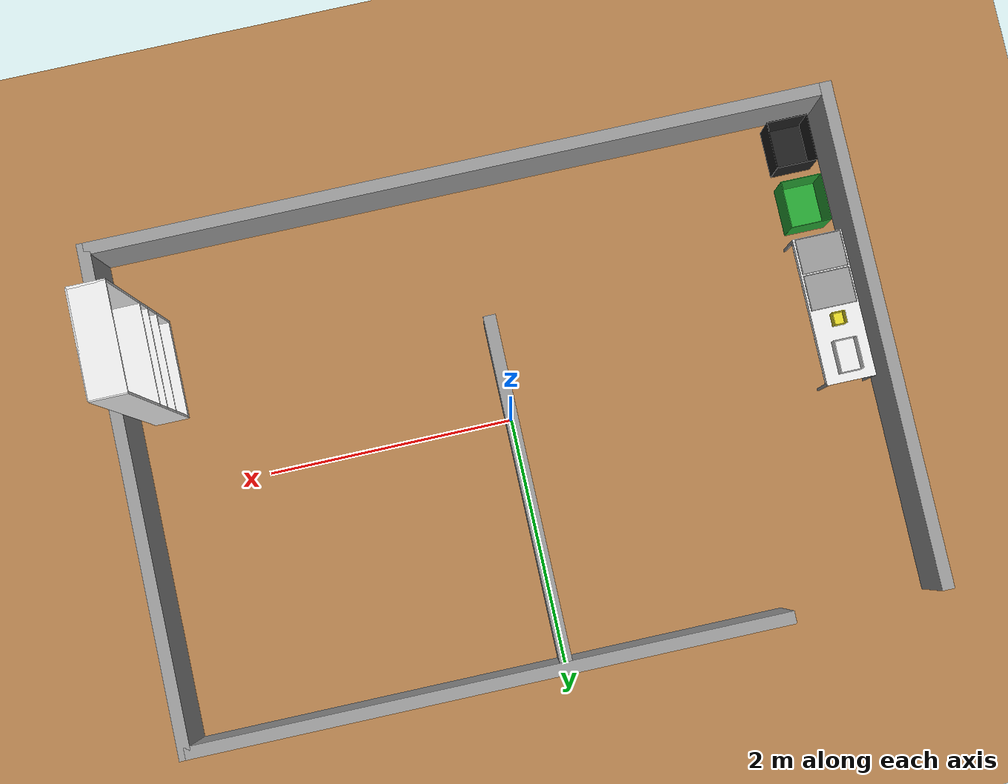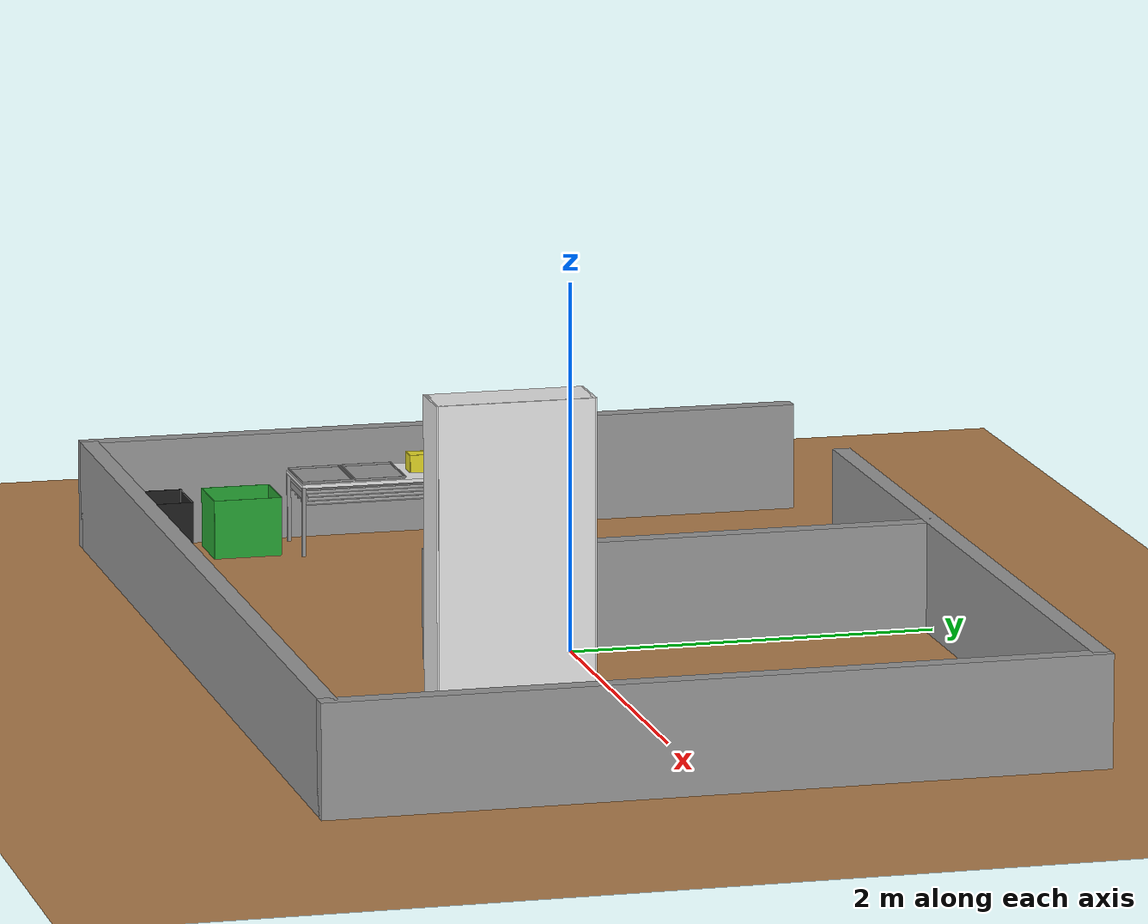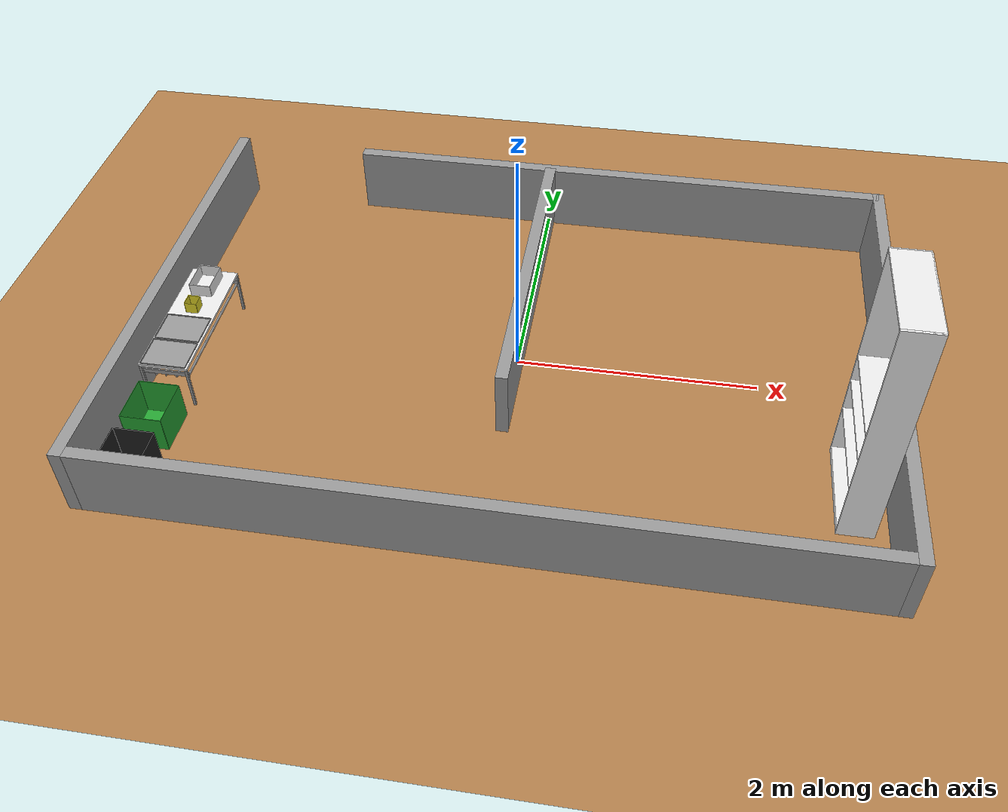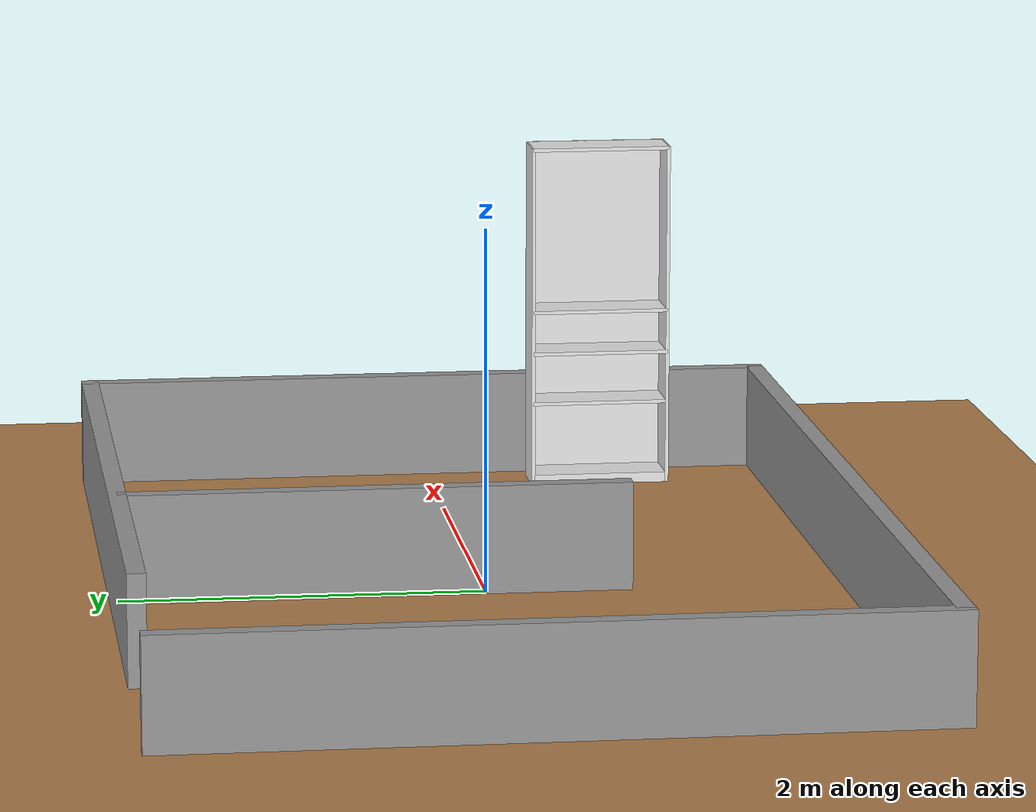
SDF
<sdf version="1.6">
 <world name="default">
  <model name="wrc_ground_plane">
   <static>1</static>
   <link name="link">
    <collision name="collision">
     <geometry><plane><normal>0 0 1</normal><size>10 10</size></plane></geometry>
     <surface>
      <contact><collide_bitmask>65535</collide_bitmask></contact>
      <friction><ode><mu>100</mu><mu2>50</mu2></ode></friction>
     </surface>
    </collision>
    <visual name="visual">
     <cast_shadows>0</cast_shadows>
     <geometry><plane><normal>0 0 1</normal><size>10 10</size></plane></geometry>
     <material>
      <script><uri>model://wrc_ground_plane/materials/wood.material</uri><name>WRS/WoodFloor</name></script>
     </material>
    </visual>
   </link>
  </model>
  <model name="wrc_frame">
   <static>1</static>
   <link name="link">
    <inertial><mass>1</mass></inertial>
    <collision name="wall_back">
     <pose>0.6 2 0.3 0 -0 0</pose>
     <geometry><box><size>4.8 0.1 0.6</size></box></geometry>
    </collision>
    <visual name="wall_back_v">
     <pose>0.6 2 0.3 0 -0 0</pose>
     <geometry><box><size>4.8 0.1 0.6</size></box></geometry>
     <material>
      <script><uri>file://media/materials/scripts/gazebo.material</uri><name>Gazebo/Gray</name></script>
     </material>
    </visual>
    <collision name="wall_front">
     <pose>0 -2 0.3 0 -0 0</pose>
     <geometry><box><size>6 0.1 0.6</size></box></geometry>
    </collision>
    <visual name="wall_front_v">
     <pose>0 -2 0.3 0 -0 0</pose>
     <geometry><box><size>6 0.1 0.6</size></box></geometry>
     <material>
      <script><uri>file://media/materials/scripts/gazebo.material</uri><name>Gazebo/Gray</name></script>
     </material>
    </visual>
    <collision name="wall_left">
     <pose>-3 0 0.3 0 -0 0</pose>
     <geometry><box><size>0.1 4.1 0.6</size></box></geometry>
    </collision>
    <visual name="wall_left_v">
     <pose>-3 0 0.3 0 -0 0</pose>
     <geometry><box><size>0.1 4.1 0.6</size></box></geometry>
     <material>
      <script><uri>file://media/materials/scripts/gazebo.material</uri><name>Gazebo/Gray</name></script>
     </material>
    </visual>
    <collision name="wall_right">
     <pose>3 0 0.3 0 -0 0</pose>
     <geometry><box><size>0.1 4.1 0.6</size></box></geometry>
    </collision>
    <visual name="wall_right_v">
     <pose>3 0 0.3 0 -0 0</pose>
     <geometry><box><size>0.1 4.1 0.6</size></box></geometry>
     <material>
      <script><uri>file://media/materials/scripts/gazebo.material</uri><name>Gazebo/Gray</name></script>
     </material>
    </visual>
    <collision name="wall_center">
     <pose>0 0.6 0.3 0 -0 0</pose>
     <geometry><box><size>0.1 2.8 0.6</size></box></geometry>
    </collision>
    <visual name="wall_center_v">
     <pose>0 0.6 0.3 0 -0 0</pose>
     <geometry><box><size>0.1 2.8 0.6</size></box></geometry>
     <material>
      <script><uri>file://media/materials/scripts/gazebo.material</uri><name>Gazebo/Gray</name></script>
     </material>
    </visual>
   </link>
  </model>
  <model name="wrc_bookshelf">
   <static>1</static>
   <link name="link">
    <inertial><mass>1</mass></inertial>
    <collision name="back">
     <pose>0 0.005 1.01 0 -0 0</pose>
     <geometry><box><size>0.8 0.01 2.02</size></box></geometry>
    </collision>
    <visual name="back_v">
     <pose>0 0.14 1.01 0 -0 0</pose>
     <geometry><box><size>0.8 0.01 2.02</size></box></geometry>
     <material>
      <script><uri>file://media/materials/scripts/gazebo.material</uri><name>Gazebo/White</name></script>
     </material>
    </visual>
    <collision name="left_side">
     <pose>0.4 0 1.01 0 -0 0</pose>
     <geometry><box><size>0.02 0.28 2.02</size></box></geometry>
    </collision>
    <visual name="left_side_v">
     <pose>0.4 0 1.01 0 -0 0</pose>
     <geometry><box><size>0.02 0.28 2.02</size></box></geometry>
     <material>
      <script><uri>file://media/materials/scripts/gazebo.material</uri><name>Gazebo/White</name></script>
     </material>
    </visual>
    <collision name="right_side">
     <pose>-0.4 0 1.01 0 -0 0</pose>
     <geometry><box><size>0.02 0.28 2.02</size></box></geometry>
    </collision>
    <visual name="right_side_v">
     <pose>-0.4 0 1.01 0 -0 0</pose>
     <geometry><box><size>0.02 0.28 2.02</size></box></geometry>
     <material>
      <script><uri>file://media/materials/scripts/gazebo.material</uri><name>Gazebo/White</name></script>
     </material>
    </visual>
    <collision name="bottom">
     <pose>0 0 0.03 0 -0 0</pose>
     <geometry><box><size>0.8 0.28 0.06</size></box></geometry>
    </collision>
    <visual name="bottom_v">
     <pose>0 0 0.03 0 -0 0</pose>
     <geometry><box><size>0.8 0.28 0.06</size></box></geometry>
     <material>
      <script><uri>file://media/materials/scripts/gazebo.material</uri><name>Gazebo/White</name></script>
     </material>
    </visual>
    <collision name="top">
     <pose>0 0 2.01 0 -0 0</pose>
     <geometry><box><size>0.8 0.28 0.02</size></box></geometry>
    </collision>
    <visual name="top_v">
     <pose>0 0 2.01 0 -0 0</pose>
     <geometry><box><size>0.8 0.28 0.02</size></box></geometry>
     <material>
      <script><uri>file://media/materials/scripts/gazebo.material</uri><name>Gazebo/White</name></script>
     </material>
    </visual>
    <collision name="slit1">
     <pose>0 0 0.49 0 -0 0</pose>
     <geometry><box><size>0.8 0.28 0.02</size></box></geometry>
    </collision>
    <visual name="slit1_v">
     <pose>0 0 0.49 0 -0 0</pose>
     <geometry><box><size>0.8 0.28 0.02</size></box></geometry>
     <material>
      <script><uri>file://media/materials/scripts/gazebo.material</uri><name>Gazebo/White</name></script>
     </material>
    </visual>
    <collision name="slit2">
     <pose>0 0 0.79 0 -0 0</pose>
     <geometry><box><size>0.8 0.28 0.02</size></box></geometry>
    </collision>
    <visual name="slit2_v">
     <pose>0 0 0.79 0 -0 0</pose>
     <geometry><box><size>0.8 0.28 0.02</size></box></geometry>
     <material>
      <script><uri>file://media/materials/scripts/gazebo.material</uri><name>Gazebo/White</name></script>
     </material>
    </visual>
    <collision name="slit3">
     <pose>0 0 1.04 0 -0 0</pose>
     <geometry><box><size>0.8 0.28 0.02</size></box></geometry>
    </collision>
    <visual name="slit3_v">
     <pose>0 0 1.04 0 -0 0</pose>
     <geometry><box><size>0.8 0.28 0.02</size></box></geometry>
     <material>
      <script><uri>file://media/materials/scripts/gazebo.material</uri><name>Gazebo/White</name></script>
     </material>
    </visual>
   </link>
   <pose>2.7 -1 0 0 0 -1.57</pose>
  </model>
  <model name="wrc_bin_black">
   <static>1</static>
   <link name="link">
    <inertial><mass>1</mass></inertial>
    <collision name="bottom">
     <pose>0 0 0.002 0 -0 0</pose>
     <geometry><box><size>0.33 0.38 0.004</size></box></geometry>
    </collision>
    <visual name="bottom_v">
     <pose>0 0 0.002 0 -0 0</pose>
     <geometry><box><size>0.33 0.38 0.004</size></box></geometry>
     <material>
      <script><uri>file://media/materials/scripts/gazebo.material</uri><name>Gazebo/Black</name></script>
     </material>
    </visual>
    <collision name="front">
     <pose>0 0.19 0.165 0 -0 0</pose>
     <geometry><box><size>0.33 0.004 0.33</size></box></geometry>
    </collision>
    <visual name="front_v">
     <pose>0 0.19 0.165 0 -0 0</pose>
     <geometry><box><size>0.33 0.004 0.33</size></box></geometry>
     <material>
      <script><uri>file://media/materials/scripts/gazebo.material</uri><name>Gazebo/Black</name></script>
     </material>
    </visual>
    <collision name="back">
     <pose>0 -0.19 0.165 0 -0 0</pose>
     <geometry><box><size>0.33 0.004 0.33</size></box></geometry>
    </collision>
    <visual name="back_v">
     <pose>0 -0.19 0.165 0 -0 0</pose>
     <geometry><box><size>0.33 0.004 0.33</size></box></geometry>
     <material>
      <script><uri>file://media/materials/scripts/gazebo.material</uri><name>Gazebo/Black</name></script>
     </material>
    </visual>
    <collision name="left">
     <pose>0.165 0 0.165 0 -0 0</pose>
     <geometry><box><size>0.004 0.38 0.33</size></box></geometry>
    </collision>
    <visual name="left_v">
     <pose>0.165 0 0.165 0 -0 0</pose>
     <geometry><box><size>0.004 0.38 0.33</size></box></geometry>
     <material>
      <script><uri>file://media/materials/scripts/gazebo.material</uri><name>Gazebo/Black</name></script>
     </material>
    </visual>
    <collision name="right">
     <pose>-0.165 0 0.165 0 -0 0</pose>
     <geometry><box><size>0.004 0.38 0.33</size></box></geometry>
    </collision>
    <visual name="right_v">
     <pose>-0.165 0 0.165 0 -0 0</pose>
     <geometry><box><size>0.004 0.38 0.33</size></box></geometry>
     <material>
      <script><uri>file://media/materials/scripts/gazebo.material</uri><name>Gazebo/Black</name></script>
     </material>
    </visual>
   </link>
   <pose>-2.7 -1.7 0 0 -0 0</pose>
  </model>
  <model name="wrc_bin_green">
   <static>1</static>
   <link name="link">
    <inertial><mass>1</mass></inertial>
    <collision name="bottom">
     <pose>0 0 0.002 0 -0 0</pose>
     <geometry><box><size>0.33 0.38 0.004</size></box></geometry>
    </collision>
    <visual name="bottom_v">
     <pose>0 0 0.002 0 -0 0</pose>
     <geometry><box><size>0.33 0.38 0.004</size></box></geometry>
     <material>
      <script><uri>file://media/materials/scripts/gazebo.material</uri><name>Gazebo/Green</name></script>
     </material>
    </visual>
    <collision name="front">
     <pose>0 0.19 0.165 0 -0 0</pose>
     <geometry><box><size>0.33 0.004 0.33</size></box></geometry>
    </collision>
    <visual name="front_v">
     <pose>0 0.19 0.165 0 -0 0</pose>
     <geometry><box><size>0.33 0.004 0.33</size></box></geometry>
     <material>
      <script><uri>file://media/materials/scripts/gazebo.material</uri><name>Gazebo/Green</name></script>
     </material>
    </visual>
    <collision name="back">
     <pose>0 -0.19 0.165 0 -0 0</pose>
     <geometry><box><size>0.33 0.004 0.33</size></box></geometry>
    </collision>
    <visual name="back_v">
     <pose>0 -0.19 0.165 0 -0 0</pose>
     <geometry><box><size>0.33 0.004 0.33</size></box></geometry>
     <material>
      <script><uri>file://media/materials/scripts/gazebo.material</uri><name>Gazebo/Green</name></script>
     </material>
    </visual>
    <collision name="left">
     <pose>0.165 0 0.165 0 -0 0</pose>
     <geometry><box><size>0.004 0.38 0.33</size></box></geometry>
    </collision>
    <visual name="left_v">
     <pose>0.165 0 0.165 0 -0 0</pose>
     <geometry><box><size>0.004 0.38 0.33</size></box></geometry>
     <material>
      <script><uri>file://media/materials/scripts/gazebo.material</uri><name>Gazebo/Green</name></script>
     </material>
    </visual>
    <collision name="right">
     <pose>-0.165 0 0.165 0 -0 0</pose>
     <geometry><box><size>0.004 0.38 0.33</size></box></geometry>
    </collision>
    <visual name="right_v">
     <pose>-0.165 0 0.165 0 -0 0</pose>
     <geometry><box><size>0.004 0.38 0.33</size></box></geometry>
     <material>
      <script><uri>file://media/materials/scripts/gazebo.material</uri><name>Gazebo/Green</name></script>
     </material>
    </visual>
   </link>
   <pose>-2.7 -1.2 0 0 -0 0</pose>
  </model>
  <model name="wrc_long_table_0">
   <static>1</static>
   <link name="link">
    <inertial><mass>1</mass></inertial>
    <collision name="top">
     <pose>0 0 0.39 0 -0 0</pose>
     <geometry><box><size>1.2 0.4 0.02</size></box></geometry>
    </collision>
    <visual name="top_v">
     <pose>0 0 0.39 0 -0 0</pose>
     <geometry><box><size>1.2 0.4 0.02</size></box></geometry>
     <material>
      <script><uri>file://media/materials/scripts/gazebo.material</uri><name>Gazebo/White</name></script>
     </material>
    </visual>
    <collision name="leg1">
     <pose>0.59 0.19 0.185 0 -0 0</pose>
     <geometry><box><size>0.02 0.02 0.4</size></box></geometry>
    </collision>
    <visual name="leg1_v">
     <pose>0.59 0.19 0.185 0 -0 0</pose>
     <geometry><box><size>0.02 0.02 0.4</size></box></geometry>
     <material>
      <script><uri>file://media/materials/scripts/gazebo.material</uri><name>Gazebo/Gray</name></script>
     </material>
    </visual>
    <collision name="leg2">
     <pose>-0.59 0.19 0.185 0 -0 0</pose>
     <geometry><box><size>0.02 0.02 0.4</size></box></geometry>
    </collision>
    <visual name="leg2_v">
     <pose>-0.59 0.19 0.185 0 -0 0</pose>
     <geometry><box><size>0.02 0.02 0.4</size></box></geometry>
     <material>
      <script><uri>file://media/materials/scripts/gazebo.material</uri><name>Gazebo/Gray</name></script>
     </material>
    </visual>
    <collision name="leg3">
     <pose>0.59 -0.19 0.185 0 -0 0</pose>
     <geometry><box><size>0.02 0.02 0.4</size></box></geometry>
    </collision>
    <visual name="leg3_v">
     <pose>0.59 -0.19 0.185 0 -0 0</pose>
     <geometry><box><size>0.02 0.02 0.4</size></box></geometry>
     <material>
      <script><uri>file://media/materials/scripts/gazebo.material</uri><name>Gazebo/Gray</name></script>
     </material>
    </visual>
    <collision name="leg4">
     <pose>-0.59 -0.19 0.185 0 -0 0</pose>
     <geometry><box><size>0.02 0.02 0.4</size></box></geometry>
    </collision>
    <visual name="leg4_v">
     <pose>-0.59 -0.19 0.185 0 -0 0</pose>
     <geometry><box><size>0.02 0.02 0.4</size></box></geometry>
     <material>
      <script><uri>file://media/materials/scripts/gazebo.material</uri><name>Gazebo/Gray</name></script>
     </material>
    </visual>
    <collision name="side_panel1">
     <pose>0.575 0 0.32 0 -0 0</pose>
     <geometry><box><size>0.01 0.4 0.04</size></box></geometry>
    </collision>
    <visual name="side_panel1_v">
     <pose>0.575 0 0.32 0 -0 0</pose>
     <geometry><box><size>0.01 0.4 0.04</size></box></geometry>
     <material>
      <script><uri>file://media/materials/scripts/gazebo.material</uri><name>Gazebo/Gray</name></script>
     </material>
    </visual>
    <collision name="side_panel2">
     <pose>-0.575 0 0.32 0 -0 0</pose>
     <geometry><box><size>0.01 0.4 0.04</size></box></geometry>
    </collision>
    <visual name="side_panel2_v">
     <pose>-0.575 0 0.32 0 -0 0</pose>
     <geometry><box><size>0.01 0.4 0.04</size></box></geometry>
     <material>
      <script><uri>file://media/materials/scripts/gazebo.material</uri><name>Gazebo/Gray</name></script>
     </material>
    </visual>
    <collision name="bar1">
     <pose>0 0.2 0.29 0 1.57 0</pose>
     <geometry><cylinder><radius>0.01</radius><length>1.16</length></cylinder></geometry>
    </collision>
    <visual name="bar1_v">
     <pose>0 0.19 0.29 0 1.57 0</pose>
     <geometry><cylinder><radius>0.01</radius><length>1.16</length></cylinder></geometry>
     <material>
      <script><uri>file://media/materials/scripts/gazebo.material</uri><name>Gazebo/Gray</name></script>
     </material>
    </visual>
    <collision name="bar2">
     <pose>0 0.08 0.29 0 1.57 0</pose>
     <geometry><cylinder><radius>0.01</radius><length>1.16</length></cylinder></geometry>
    </collision>
    <visual name="bar2_v">
     <pose>0 0.08 0.29 0 1.57 0</pose>
     <geometry><cylinder><radius>0.01</radius><length>1.16</length></cylinder></geometry>
     <material>
      <script><uri>file://media/materials/scripts/gazebo.material</uri><name>Gazebo/Gray</name></script>
     </material>
    </visual>
    <collision name="bar3">
     <pose>0 0 0.29 0 1.57 0</pose>
     <geometry><cylinder><radius>0.01</radius><length>1.16</length></cylinder></geometry>
    </collision>
    <visual name="bar3_v">
     <pose>0 0 0.29 0 1.57 0</pose>
     <geometry><cylinder><radius>0.01</radius><length>1.16</length></cylinder></geometry>
     <material>
      <script><uri>file://media/materials/scripts/gazebo.material</uri><name>Gazebo/Gray</name></script>
     </material>
    </visual>
    <collision name="bar4">
     <pose>0 -0.08 0.29 0 1.57 0</pose>
     <geometry><cylinder><radius>0.01</radius><length>1.16</length></cylinder></geometry>
    </collision>
    <visual name="bar4_v">
     <pose>0 -0.09 0.29 0 1.57 0</pose>
     <geometry><cylinder><radius>0.01</radius><length>1.16</length></cylinder></geometry>
     <material>
      <script><uri>file://media/materials/scripts/gazebo.material</uri><name>Gazebo/Gray</name></script>
     </material>
    </visual>
    <collision name="bar5">
     <pose>0 -0.18 0.29 0 1.57 0</pose>
     <geometry><cylinder><radius>0.01</radius><length>1.16</length></cylinder></geometry>
    </collision>
    <visual name="bar5_v">
     <pose>0 -0.18 0.29 0 1.57 0</pose>
     <geometry><cylinder><radius>0.01</radius><length>1.16</length></cylinder></geometry>
     <material>
      <script><uri>file://media/materials/scripts/gazebo.material</uri><name>Gazebo/Gray</name></script>
     </material>
    </visual>
   </link>
   <pose>-2.7 -0.3 0 0 -0 1.57</pose>
  </model>
  <model name="wrc_tray_1">
   <static>1</static>
   <link name="link">
    <inertial><mass>1</mass></inertial>
    <collision name="bottom">
     <pose>0 0 0.002 0 -0 0</pose>
     <geometry><box><size>0.36 0.38 0.004</size></box></geometry>
    </collision>
    <visual name="bottom_v">
     <pose>0 0 0.002 0 -0 0</pose>
     <geometry><box><size>0.285 0.37 0.004</size></box></geometry>
     <material>
      <script><uri>file://media/materials/scripts/gazebo.material</uri><name>Gazebo/Gray</name></script>
     </material>
    </visual>
    <collision name="front">
     <pose>0 0.185 0.01 0 -0 0</pose>
     <geometry><box><size>0.285 0.004 0.01</size></box></geometry>
    </collision>
    <visual name="front_v">
     <pose>0 0.185 0.01 0 -0 0</pose>
     <geometry><box><size>0.285 0.004 0.01</size></box></geometry>
     <material>
      <script><uri>file://media/materials/scripts/gazebo.material</uri><name>Gazebo/Gray</name></script>
     </material>
    </visual>
    <collision name="back">
     <pose>0 -0.185 0.01 0 -0 0</pose>
     <geometry><box><size>0.285 0.004 0.01</size></box></geometry>
    </collision>
    <visual name="back_v">
     <pose>0 -0.185 0.01 0 -0 0</pose>
     <geometry><box><size>0.285 0.004 0.01</size></box></geometry>
     <material>
      <script><uri>file://media/materials/scripts/gazebo.material</uri><name>Gazebo/Gray</name></script>
     </material>
    </visual>
    <collision name="left">
     <pose>0.1425 0 0.01 0 -0 0</pose>
     <geometry><box><size>0.004 0.37 0.01</size></box></geometry>
    </collision>
    <visual name="left_v">
     <pose>0.1425 0 0.01 0 -0 0</pose>
     <geometry><box><size>0.004 0.37 0.01</size></box></geometry>
     <material>
      <script><uri>file://media/materials/scripts/gazebo.material</uri><name>Gazebo/Gray</name></script>
     </material>
    </visual>
    <collision name="right">
     <pose>-0.1425 0 0.01 0 -0 0</pose>
     <geometry><box><size>0.004 0.37 0.01</size></box></geometry>
    </collision>
    <visual name="right_v">
     <pose>-0.1425 0 0.01 0 -0 0</pose>
     <geometry><box><size>0.004 0.37 0.01</size></box></geometry>
     <material>
      <script><uri>file://media/materials/scripts/gazebo.material</uri><name>Gazebo/Gray</name></script>
     </material>
    </visual>
   </link>
   <pose>-2.7 -0.75 0.4 0 -0 1.57</pose>
  </model>
  <model name="wrc_tray_2">
   <static>1</static>
   <link name="link">
    <inertial><mass>1</mass></inertial>
    <collision name="bottom">
     <pose>0 0 0.002 0 -0 0</pose>
     <geometry><box><size>0.36 0.38 0.004</size></box></geometry>
    </collision>
    <visual name="bottom_v">
     <pose>0 0 0.002 0 -0 0</pose>
     <geometry><box><size>0.285 0.37 0.004</size></box></geometry>
     <material>
      <script><uri>file://media/materials/scripts/gazebo.material</uri><name>Gazebo/Gray</name></script>
     </material>
    </visual>
    <collision name="front">
     <pose>0 0.185 0.01 0 -0 0</pose>
     <geometry><box><size>0.285 0.004 0.01</size></box></geometry>
    </collision>
    <visual name="front_v">
     <pose>0 0.185 0.01 0 -0 0</pose>
     <geometry><box><size>0.285 0.004 0.01</size></box></geometry>
     <material>
      <script><uri>file://media/materials/scripts/gazebo.material</uri><name>Gazebo/Gray</name></script>
     </material>
    </visual>
    <collision name="back">
     <pose>0 -0.185 0.01 0 -0 0</pose>
     <geometry><box><size>0.285 0.004 0.01</size></box></geometry>
    </collision>
    <visual name="back_v">
     <pose>0 -0.185 0.01 0 -0 0</pose>
     <geometry><box><size>0.285 0.004 0.01</size></box></geometry>
     <material>
      <script><uri>file://media/materials/scripts/gazebo.material</uri><name>Gazebo/Gray</name></script>
     </material>
    </visual>
    <collision name="left">
     <pose>0.1425 0 0.01 0 -0 0</pose>
     <geometry><box><size>0.004 0.37 0.01</size></box></geometry>
    </collision>
    <visual name="left_v">
     <pose>0.1425 0 0.01 0 -0 0</pose>
     <geometry><box><size>0.004 0.37 0.01</size></box></geometry>
     <material>
      <script><uri>file://media/materials/scripts/gazebo.material</uri><name>Gazebo/Gray</name></script>
     </material>
    </visual>
    <collision name="right">
     <pose>-0.1425 0 0.01 0 -0 0</pose>
     <geometry><box><size>0.004 0.37 0.01</size></box></geometry>
    </collision>
    <visual name="right_v">
     <pose>-0.1425 0 0.01 0 -0 0</pose>
     <geometry><box><size>0.004 0.37 0.01</size></box></geometry>
     <material>
      <script><uri>file://media/materials/scripts/gazebo.material</uri><name>Gazebo/Gray</name></script>
     </material>
    </visual>
   </link>
   <pose>-2.7 -0.45 0.4 0 -0 1.57</pose>
  </model>
  <model name="wrc_container_a">
   <static>1</static>
   <link name="link">
    <inertial><mass>1</mass></inertial>
    <collision name="bottom">
     <pose>0 0 0.002 0 -0 0</pose>
     <geometry><box><size>0.1 0.1 0.004</size></box></geometry>
    </collision>
    <visual name="bottom_v">
     <pose>0 0 0.002 0 -0 0</pose>
     <geometry><box><size>0.1 0.1 0.004</size></box></geometry>
     <material>
      <script><uri>file://media/materials/scripts/gazebo.material</uri><name>Gazebo/Yellow</name></script>
     </material>
    </visual>
    <collision name="front">
     <pose>0 0.05 0.05 0 -0 0</pose>
     <geometry><box><size>0.1 0.004 0.1</size></box></geometry>
    </collision>
    <visual name="front_v">
     <pose>0 0.05 0.05 0 -0 0</pose>
     <geometry><box><size>0.1 0.004 0.1</size></box></geometry>
     <material>
      <script><uri>file://media/materials/scripts/gazebo.material</uri><name>Gazebo/Yellow</name></script>
     </material>
    </visual>
    <collision name="back">
     <pose>0 -0.05 0.05 0 -0 0</pose>
     <geometry><box><size>0.1 0.004 0.1</size></box></geometry>
    </collision>
    <visual name="back_v">
     <pose>0 -0.05 0.05 0 -0 0</pose>
     <geometry><box><size>0.1 0.004 0.1</size></box></geometry>
     <material>
      <script><uri>file://media/materials/scripts/gazebo.material</uri><name>Gazebo/Yellow</name></script>
     </material>
    </visual>
    <collision name="left">
     <pose>0.05 0 0.05 0 -0 0</pose>
     <geometry><box><size>0.004 0.1 0.1</size></box></geometry>
    </collision>
    <visual name="left_v">
     <pose>0.05 0 0.05 0 -0 0</pose>
     <geometry><box><size>0.004 0.1 0.1</size></box></geometry>
     <material>
      <script><uri>file://media/materials/scripts/gazebo.material</uri><name>Gazebo/Yellow</name></script>
     </material>
    </visual>
    <collision name="right">
     <pose>-0.05 0 0.05 0 -0 0</pose>
     <geometry><box><size>0.004 0.1 0.1</size></box></geometry>
    </collision>
    <visual name="right_v">
     <pose>-0.05 0 0.05 0 -0 0</pose>
     <geometry><box><size>0.004 0.1 0.1</size></box></geometry>
     <material>
      <script><uri>file://media/materials/scripts/gazebo.material</uri><name>Gazebo/Yellow</name></script>
     </material>
    </visual>
   </link>
   <pose>-2.7 -0.2 0.4 0 -0 0</pose>
  </model>
  <model name="wrc_container_b">
   <static>1</static>
   <link name="link">
    <inertial><mass>1</mass></inertial>
    <collision name="bottom">
     <pose>0 0 0.002 0 -0 0</pose>
     <geometry><box><size>0.18 0.26 0.004</size></box></geometry>
    </collision>
    <visual name="bottom_v">
     <pose>0 0 0.002 0 -0 0</pose>
     <geometry><box><size>0.18 0.26 0.004</size></box></geometry>
     <material>
      <script><uri>file://media/materials/scripts/gazebo.material</uri><name>Gazebo/White</name></script>
     </material>
    </visual>
    <collision name="front">
     <pose>0 0.13 0.055 0 -0 0</pose>
     <geometry><box><size>0.18 0.004 0.11</size></box></geometry>
    </collision>
    <visual name="front_v">
     <pose>0 0.13 0.055 0 -0 0</pose>
     <geometry><box><size>0.18 0.004 0.11</size></box></geometry>
     <material>
      <script><uri>file://media/materials/scripts/gazebo.material</uri><name>Gazebo/White</name></script>
     </material>
    </visual>
    <collision name="back">
     <pose>0 -0.13 0.055 0 -0 0</pose>
     <geometry><box><size>0.18 0.004 0.11</size></box></geometry>
    </collision>
    <visual name="back_v">
     <pose>0 -0.13 0.055 0 -0 0</pose>
     <geometry><box><size>0.18 0.004 0.11</size></box></geometry>
     <material>
      <script><uri>file://media/materials/scripts/gazebo.material</uri><name>Gazebo/White</name></script>
     </material>
    </visual>
    <collision name="left">
     <pose>0.09 0 0.055 0 -0 0</pose>
     <geometry><box><size>0.004 0.26 0.11</size></box></geometry>
    </collision>
    <visual name="left_v">
     <pose>0.09 0 0.055 0 -0 0</pose>
     <geometry><box><size>0.004 0.26 0.11</size></box></geometry>
     <material>
      <script><uri>file://media/materials/scripts/gazebo.material</uri><name>Gazebo/White</name></script>
     </material>
    </visual>
    <collision name="right">
     <pose>-0.09 0 0.055 0 -0 0</pose>
     <geometry><box><size>0.004 0.26 0.11</size></box></geometry>
    </collision>
    <visual name="right_v">
     <pose>-0.09 0 0.055 0 -0 0</pose>
     <geometry><box><size>0.004 0.26 0.11</size></box></geometry>
     <material>
      <script><uri>file://media/materials/scripts/gazebo.material</uri><name>Gazebo/White</name></script>
     </material>
    </visual>
   </link>
   <pose>-2.7 0.1 0.4 0 -0 0</pose>
  </model>
 </world>
</sdf>
